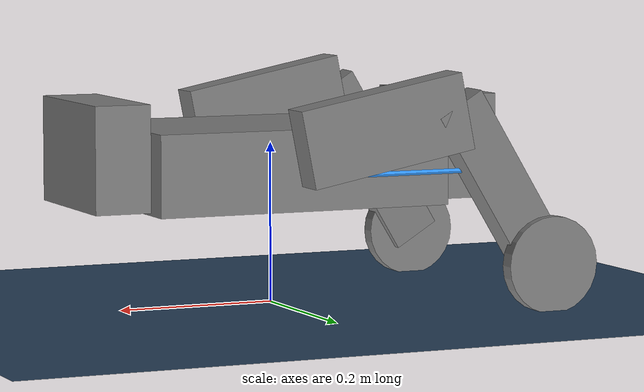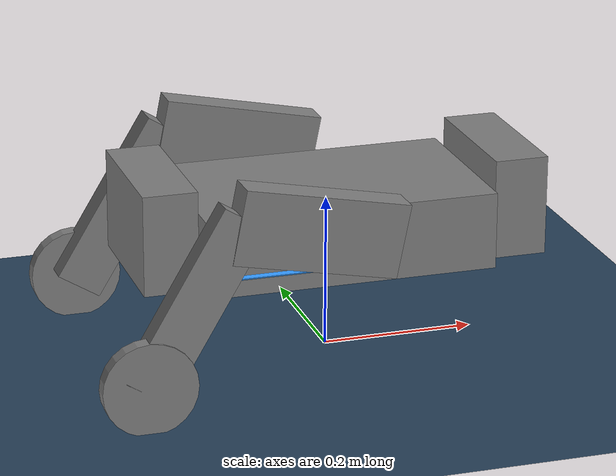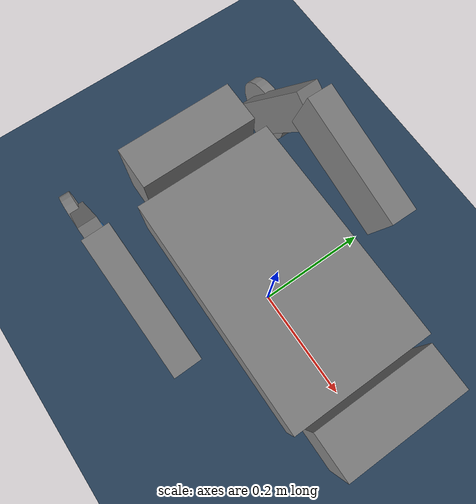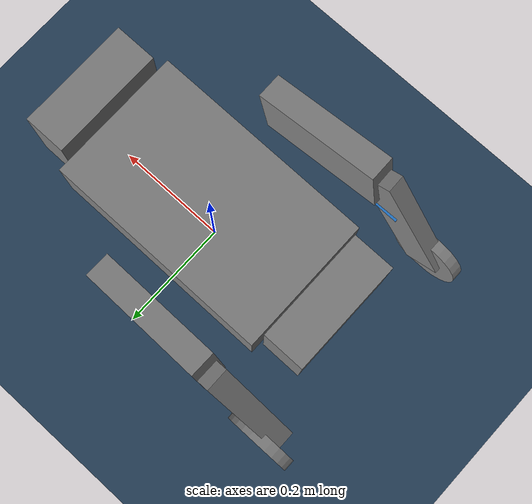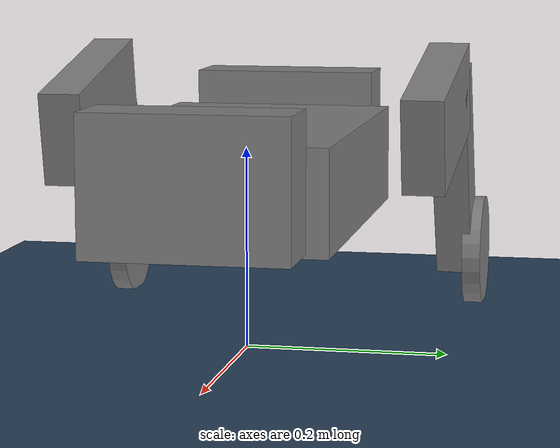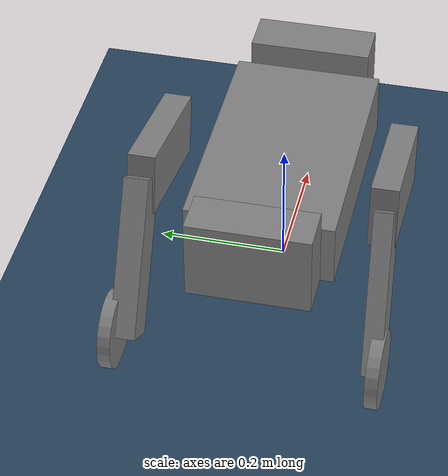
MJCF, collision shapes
<mujoco model="serialleg_fourbar_surrogate_train">
  <compiler angle="radian" meshdir="../meshes" autolimits="true" strippath="false" />
  <option timestep="0.002" solver="Newton" cone="pyramidal" />
  <visual>
    <global offwidth="1280" offheight="720" />
  </visual>
  <default>
    <geom solref="0.004 1.5" solimp="0.85 0.99 0.005" />
    <joint damping="0" />
  </default>
  <asset>
    <texture name="grid" type="2d" builtin="checker" width="512" height="512" rgb1=".1 .2 .3" rgb2=".2 .3 .4" />
    <material name="grid" texture="grid" texrepeat="1 1" texuniform="true" reflectance=".2" />
    <mesh name="visual_swbase_base_link_00" file="sw_original_base/base_link_chunk_00.stl" />
    <mesh name="visual_swbase_base_link_01" file="sw_original_base/base_link_chunk_01.stl" />
    <mesh name="visual_swbase_base_link_02" file="sw_original_base/base_link_chunk_02.stl" />
    <mesh name="visual_swbase_base_link_03" file="sw_original_base/base_link_chunk_03.stl" />
    <mesh name="visual_swbase_base_link_04" file="sw_original_base/base_link_chunk_04.stl" />
    <mesh name="visual_swbase_base_link_05" file="sw_original_base/base_link_chunk_05.stl" />
    <mesh name="visual_swbase_base_link_06" file="sw_original_base/base_link_chunk_06.stl" />
    <mesh name="visual_swbase_base_link_07" file="sw_original_base/base_link_chunk_07.stl" />
    <mesh name="visual_swbase_base_link_08" file="sw_original_base/base_link_chunk_08.stl" />
    <mesh name="visual_swbase_base_link_09" file="sw_original_base/base_link_chunk_09.stl" />
    <mesh name="visual_swbase_base_link_10" file="sw_original_base/base_link_chunk_10.stl" />
    <mesh name="visual_swbase_base_link_11" file="sw_original_base/base_link_chunk_11.stl" />
    <mesh name="visual_swbase_base_link_12" file="sw_original_base/base_link_chunk_12.stl" />
    <mesh name="visual_lf_wheel" file="lf_wheel_link.STL" />
    <mesh name="visual_rf_wheel" file="rf_wheel_link.STL" />
    <mesh name="visual_lf_thigh" file="lf_thigh_link.STL" />
    <mesh name="visual_l_calf" file="lf_calf_3_link.STL" />
    <mesh name="visual_rf_thigh" file="rf_thigh_link.STL" />
    <mesh name="visual_r_calf" file="rf_calf_3_link.STL" />
  </asset>
  <worldbody>
    <geom name="floor" type="plane" size="0 0 .05" material="grid" friction="0.8 0.005 0.0001" contype="2" conaffinity="1" />
    <light name="spotlight" mode="targetbodycom" target="base_link" diffuse=".8 .8 .8" specular="0.3 0.3 0.3" pos="0 -6 4" cutoff="30" />
    <body name="base_link" pos="0 0 0.22">
      <site name="fourbar_surrogate_marker" pos="0 0 0" size="0.001" group="5" />
      <freejoint />
      <inertial pos="-0.01780372 0.01307697 -0.03342401" mass="10.74541262" fullinertia="0.14395729 0.21248062 0.30929562 -0.00229101 0.00807199 -0.00039793" />
      <geom name="base_link_sw_raw_visual_00" type="mesh" mesh="visual_swbase_base_link_00" contype="0" conaffinity="0" group="1" />
      <geom name="base_link_sw_raw_visual_01" type="mesh" mesh="visual_swbase_base_link_01" contype="0" conaffinity="0" group="1" />
      <geom name="base_link_sw_raw_visual_02" type="mesh" mesh="visual_swbase_base_link_02" contype="0" conaffinity="0" group="1" />
      <geom name="base_link_sw_raw_visual_03" type="mesh" mesh="visual_swbase_base_link_03" contype="0" conaffinity="0" group="1" />
      <geom name="base_link_sw_raw_visual_04" type="mesh" mesh="visual_swbase_base_link_04" contype="0" conaffinity="0" group="1" />
      <geom name="base_link_sw_raw_visual_05" type="mesh" mesh="visual_swbase_base_link_05" contype="0" conaffinity="0" group="1" />
      <geom name="base_link_sw_raw_visual_06" type="mesh" mesh="visual_swbase_base_link_06" contype="0" conaffinity="0" group="1" />
      <geom name="base_link_sw_raw_visual_07" type="mesh" mesh="visual_swbase_base_link_07" contype="0" conaffinity="0" group="1" />
      <geom name="base_link_sw_raw_visual_08" type="mesh" mesh="visual_swbase_base_link_08" contype="0" conaffinity="0" group="1" />
      <geom name="base_link_sw_raw_visual_09" type="mesh" mesh="visual_swbase_base_link_09" contype="0" conaffinity="0" group="1" />
      <geom name="base_link_sw_raw_visual_10" type="mesh" mesh="visual_swbase_base_link_10" contype="0" conaffinity="0" group="1" />
      <geom name="base_link_sw_raw_visual_11" type="mesh" mesh="visual_swbase_base_link_11" contype="0" conaffinity="0" group="1" />
      <geom name="base_link_sw_raw_visual_12" type="mesh" mesh="visual_swbase_base_link_12" contype="0" conaffinity="0" group="1" />
      <geom name="base_link_collision_core" type="box" pos="0 0 -0.045" size="0.190 0.115 0.050" group="0" contype="1" conaffinity="2" />
      <geom name="base_link_collision_front" type="box" pos="0.230 0 -0.025" size="0.035 0.095 0.065" group="0" contype="1" conaffinity="2" />
      <geom name="base_link_collision_rear" type="box" pos="-0.230 0 -0.025" size="0.035 0.095 0.065" group="0" contype="1" conaffinity="2" />
      <body name="lf0_Link" pos="0 0.16885 0">
        <joint name="lf0_Joint" type="hinge" axis="0 1 0" armature="0.01" limited="false" />
        <inertial pos="-0.09968276 0.00404879 0.00282013" mass="0.32242010" fullinertia="0.00013496 0.00177872 0.00170006 0.00007976 0.00009393 -0.00000238" />
        <geom name="lf0_Link_visual" type="mesh" mesh="visual_lf_thigh" contype="0" conaffinity="0" group="1" />
        <site name="lf_thigh_end" pos="-0.17993464 0.0215 0.00489576" size="0.008" rgba="1 0 0 1" />
        <site name="l_spring_p1" pos="0.00705 0.00497702 -0.04678497" group="4" />
        <geom name="lf0_Link_collision_obb_trim" type="box" pos="-0.0687901 0.0116388 0.00794337" size="0.0210477 0.0475702 0.106286" quat="0.543139 0.444821 -0.45277 -0.549667" group="0" contype="1" conaffinity="2" />
        <body name="lf1_Link" pos="-0.12990117 0.0215 0.04639203">
          <joint name="lf1_Joint" type="hinge" pos="-0.05003347 0 -0.04149627" axis="0 1 0" damping="1" armature="0.02" limited="true" range="-1.389388135292 0" />
          <inertial pos="-0.04177153 -0.00094144 -0.06569666" mass="0.32184046" fullinertia="0.00126318 0.00185755 0.00061944 0.00000296 -0.00076497 0.00001136" />
          <geom name="lf1_Link_visual" type="mesh" mesh="visual_l_calf" contype="0" conaffinity="0" group="1" />
          <site name="lf_calf_closure" pos="-0.05003347 0 -0.04149627" size="0.008" rgba="0 1 0 1" />
          <site name="lf_coupler_closure" pos="0 0 0" size="0.008" rgba="0 0.7 1 1" />
          <site name="l_spring_p2" pos="-0.09034883 -0.01652298 -0.09317700" group="4" />
          <geom name="lf1_Link_collision_obb_trim" type="box" pos="-0.0968146 -0.00854998 -0.11303" size="0.0191449 0.0319916 0.12124" quat="0.187944 -0.678689 -0.681734 0.198235" group="0" contype="1" conaffinity="2" />
          <body name="l_wheel_Link" pos="-0.15699 0.02705 -0.21049">
            <joint name="l_wheel_Joint" type="hinge" axis="0 1 0" armature="0.005" />
            <inertial pos="-0.00007447 -0.00660229 -0.00008940" mass="0.27783378" fullinertia="0.00026503 0.00048080 0.00026516 -0.00000020 0.00000031 -0.00000025" />
            <geom type="mesh" mesh="visual_lf_wheel" pos="0 0 0" name="l_wheel_Link_visual" contype="0" conaffinity="0" group="1" />
            <geom name="l_wheel_Link_collision_0" type="cylinder" size="0.060 0.010" pos="0 -0.015925 0" euler="1.5708 0 0" group="0" contype="1" conaffinity="2" friction="0.8 0.005 0.0001" />
          </body>
        </body>
      </body>
      <body name="rf0_Link" pos="0 -0.16885 0">
        <joint name="rf0_Joint" type="hinge" axis="0 -1 0" armature="0.01" limited="false" />
        <inertial pos="-0.09968276 -0.00404879 0.00282013" mass="0.32242010" fullinertia="0.00013496 0.00177872 0.00170006 -0.00007976 0.00009393 0.00000238" />
        <geom name="rf0_Link_visual" type="mesh" mesh="visual_rf_thigh" contype="0" conaffinity="0" group="1" />
        <site name="rf_thigh_end" pos="-0.179935 -0.0200 0.004896" size="0.008" rgba="1 0 0 1" />
        <site name="r_spring_p1" pos="0.00705 -0.00497702 -0.04678497" group="4" />
        <geom name="rf0_Link_collision_obb_trim" type="box" pos="-0.0687901 -0.0116388 0.00794337" size="0.0210477 0.0475702 0.106286" quat="0.549667 0.45277 -0.444821 -0.543139" group="0" contype="1" conaffinity="2" />
        <body name="rf1_Link" pos="-0.12990153 -0.0200 0.04639227">
          <joint name="rf1_Joint" type="hinge" pos="-0.05003347 0 -0.04149627" axis="0 -1 0" damping="1" armature="0.02" limited="true" range="0 1.389388135292" />
          <inertial pos="-0.04177153 0.00094144 -0.06569666" mass="0.32184046" fullinertia="0.00126318 0.00185755 0.00061944 -0.00000296 -0.00076497 -0.00001136" />
          <geom name="rf1_Link_visual" type="mesh" mesh="visual_r_calf" contype="0" conaffinity="0" group="1" />
          <site name="rf_calf_closure" pos="-0.05003347 0 -0.04149627" size="0.008" rgba="0 1 0 1" />
          <site name="rf_coupler_closure" pos="0 0 0" size="0.008" rgba="0 0.7 1 1" />
          <site name="r_spring_p2" pos="-0.09034883 0.01502298 -0.09317700" group="4" />
          <geom name="rf1_Link_collision_obb_trim" type="box" pos="-0.0967442 -0.00127326 -0.112917" size="0.0148243 0.0319988 0.121621" quat="0.207012 0.684465 -0.67571 -0.17908" group="0" contype="1" conaffinity="2" />
          <body name="r_wheel_Link" pos="-0.15699 -0.02705 -0.21049">
            <joint name="r_wheel_Joint" type="hinge" axis="0 -1 0" armature="0.005" />
            <inertial pos="-0.00007447 0.00660229 -0.00008940" mass="0.27783378" fullinertia="0.00026503 0.00048080 0.00026516 0.00000020 0.00000031 0.00000025" />
            <geom type="mesh" mesh="visual_rf_wheel" pos="0 0 0" name="r_wheel_Link_visual" contype="0" conaffinity="0" group="1" />
            <geom name="r_wheel_Link_collision_0" type="cylinder" size="0.060 0.010" pos="0 0.015925 0" euler="1.5708 0 0" group="0" contype="1" conaffinity="2" friction="0.8 0.005 0.0001" />
          </body>
        </body>
      </body>
    </body>
  </worldbody>
  <tendon>
    <spatial name="l_knee_spring" width="0.003" rgba="0.2 0.6 1 1">
      <site site="l_spring_p1" />
      <site site="l_spring_p2" />
    </spatial>
    <spatial name="r_knee_spring" width="0.003" rgba="0.2 0.6 1 1">
      <site site="r_spring_p1" />
      <site site="r_spring_p2" />
    </spatial>
  </tendon>
  <keyframe>
    <key name="standing" qpos="0 0 0.22 1 0 0 0 -0.275422946189 -1.242259649307 0 0.275422946189 1.242259649307 0" />
  </keyframe>
</mujoco>
